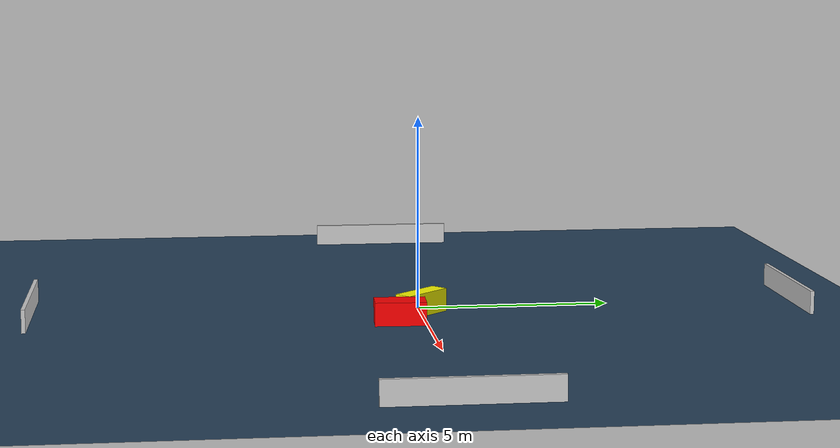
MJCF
<?xml version="1.0" ?>
<mujoco model="generated_environment">
  <option timestep="0.01" integrator="RK4" cone="elliptic"/>
  <default>
    <geom density="1"/>
  </default>
  <asset>
    <texture builtin="gradient" height="3072" name="skybox" rgb1="0.3 0.5 0.7" rgb2="0 0 0" type="skybox" width="512"/>
    <texture builtin="checker" height="300" name="groundplane" rgb1="0.2 0.3 0.4" rgb2="0.1 0.2 0.3" type="2d" width="300"/>
    <material name="groundplane" reflectance="0.2" texrepeat="5 5" texture="groundplane"/>
  </asset>
  <worldbody>
    <light dir="0 0 -1" directional="true" pos="0 0 1.5"/>
    <geom condim="3" friction="0.5 0.005 0.001" material="groundplane" name="floor" pos="0 0 0" size="0 0 0.05" type="plane"/>
    <body name="walls">
      <geom name="wall_1" condim="4" pos="-10.0 0.0 0.3" rgba="0.800000011920929 0.800000011920929 0.800000011920929 1.0" size="0.05 2.0 0.3" type="box"/>
      <geom name="wall_2" condim="4" pos="10.0 0.0 0.3" rgba="0.800000011920929 0.800000011920929 0.800000011920929 1.0" size="0.05 2.0 0.3" type="box"/>
      <geom name="wall_3" condim="4" pos="0.0 -10.0 0.3" rgba="0.800000011920929 0.800000011920929 0.800000011920929 1.0" size="2.0 0.05 0.3" type="box"/>
      <geom name="wall_4" condim="4" pos="0.0 10.0 0.3" rgba="0.800000011920929 0.800000011920929 0.800000011920929 1.0" size="2.0 0.05 0.3" type="box"/>
    </body>
    <body name="robot">
      <joint name="joint_x" type="slide" pos="0 0 0" axis="1 0 0"/>
      <joint name="joint_y" type="slide" pos="0 0 0" axis="0 1 0"/>
      <geom name="robot" type="cylinder" pos="0.0 0.0 0.2" size="0.2 0.2 0.0" mass="5.0" friction="1.0 0.005 0.0001" condim="4" rgba="1.0 1.0 0.0 1.0"/>
    </body>
    <body name="obstacle_1_movable">
      <geom name="obstacle_1_movable" condim="4" pos="0.8153411378502066 -0.010169895527332044 0.3" euler="0 0 133.29838199724412" friction="0.0 0.005 0.001" rgba="1.0 1.0 0.0 1.0" size="0.7337306874006679 0.23341989675785235 0.3" type="box" mass="0.1"/>
      <joint type="free"/>
    </body>
    <body name="obstacle_2_static">
      <geom name="obstacle_2_static" condim="4" pos="1.8576015624242408 -0.6719025126894431 0.3" euler="0 0 267.39857995197764" friction="0.0 0.005 0.001" rgba="1.0 0.0 0.0 1.0" size="0.6507530761720863 0.37519293912665086 0.3" type="box"/>
    </body>
  </worldbody>
  <actuator>
    <motor name="actuator_x" joint="joint_x" gear="1" ctrlrange="-1 1"/>
    <motor name="actuator_y" joint="joint_y" gear="1" ctrlrange="-1 1"/>
  </actuator>
</mujoco>
